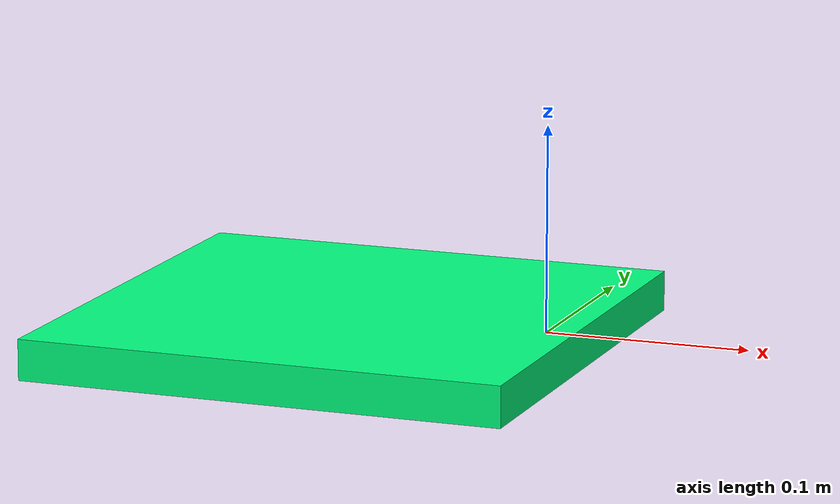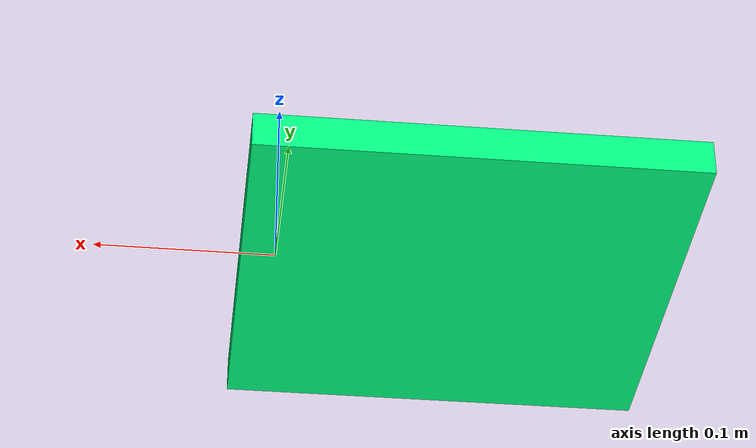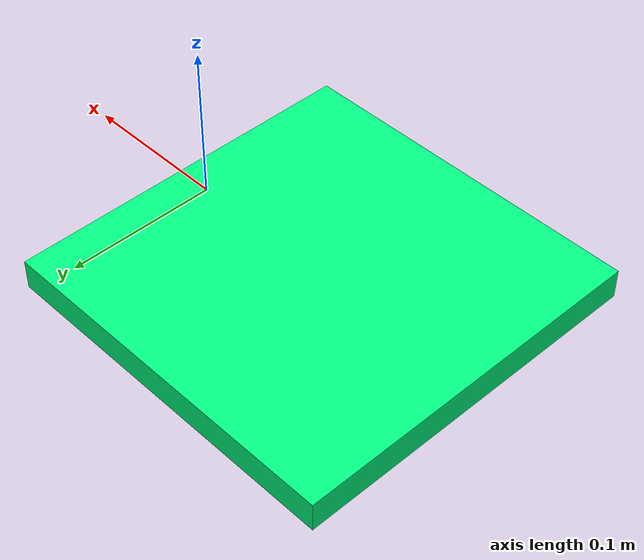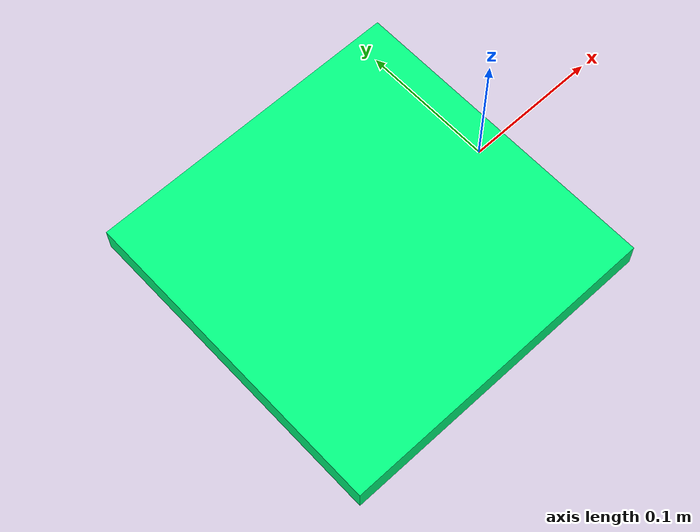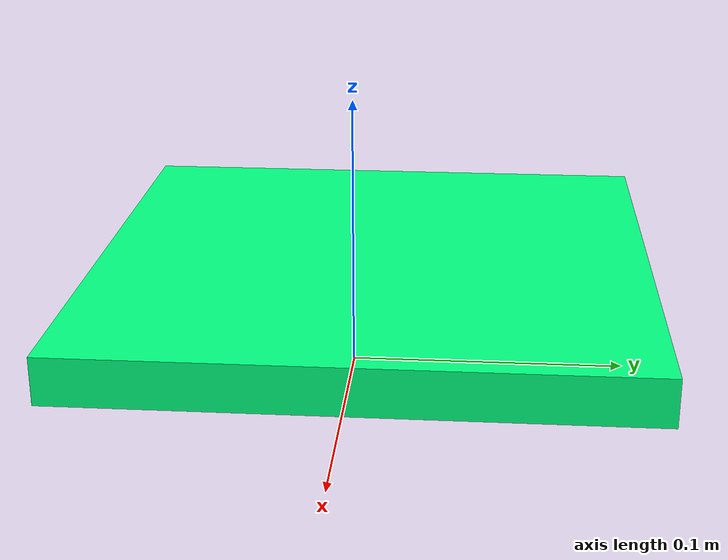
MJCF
<mujoco model="target_box">
    <worldbody>
        <body name="target_box" pos="0.0 0.0 0.0" quat="1 0 0 0">
        <geom name="target_box" pos="-0.1 0 -0.005" size="0.12 0.12 0.01" rgba="0 1 0.5 1.0" type="box" mass="0.01" friction="0.3 0.001 0.0001" priority="1" contype="0" conaffinity="0" />
        </body>

    </worldbody>
</mujoco>
